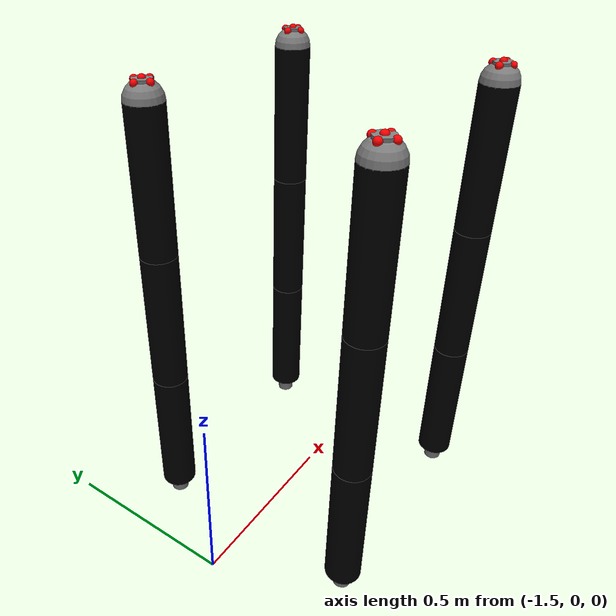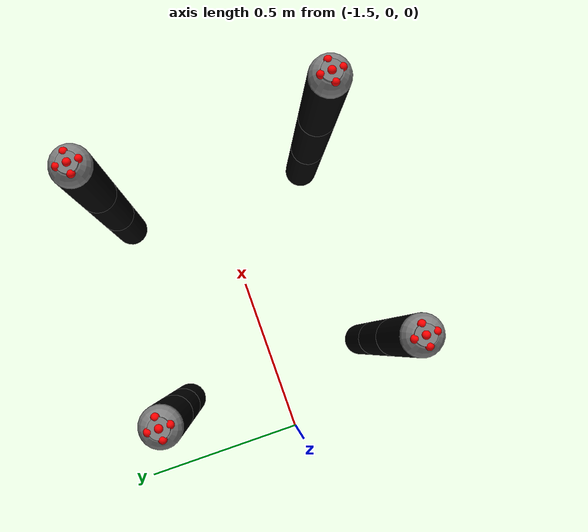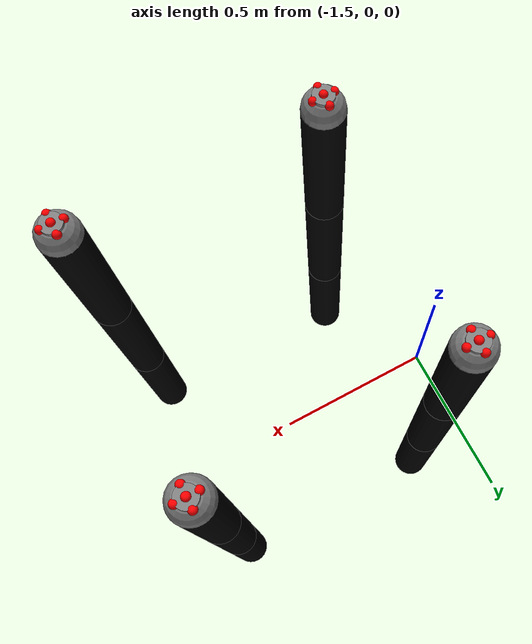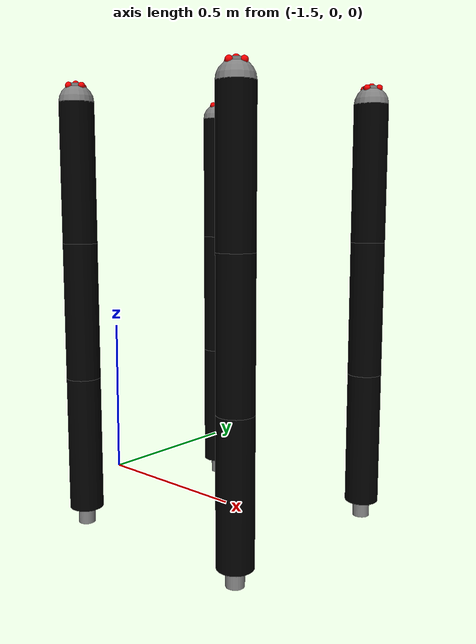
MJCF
<mujoco model="custom_environment">
    <compiler angle="radian" meshdir="assets"/>
    <option cone="elliptic" impratio="10" iterations="50" tolerance="1e-6" solver="Newton"/>
    <asset>
        <!-- 추가적인 자산 (예: 메쉬 파일, 텍스처 등)을 여기 추가할 수 있습니다 -->
    </asset>

    <default>
        <default class="robot_geom">
            <geom type="cylinder" size="0.05 0.2" pos="0 0 0.2" rgba="0 0 0 1" contype="1" conaffinity="1"/>
        </default>
        <default class="guide_geom">
            <geom type="cylinder" size="0.025 0.45" pos="0 0 0.4"/>
        </default>
        <default class="vertical_joint">
            <joint type="slide" axis="0 0 1" pos="0 0 0" range="0 3" armature="0.005" stiffness="1000" damping="10000"/>
        </default>
        <default class="sensor_geom">
            <geom type="sphere" size="0.01" pos="0 0 0" rgba="1 0 0 0" contype="1" conaffinity="1"/>
        </default>

    </default>

    <worldbody>
        <!-- 로봇 1 -->
        <body name="robot1" pos="-0.7 0.3 0.0" quat="-0.3827 0 0 0.9239">
            <body name="robot1_link1" pos="0 0 0">
                <joint name="robot1_vertical_joint" class="vertical_joint" damping="100000"/>
                <geom name="robot1_link1_geom" class="robot_geom"/>
                <body name="robot1_link2" pos="0 0 0.4">
                    <joint name="robot1_vertical_joint2" class="vertical_joint"/>
                    <geom name="robot1_link2_geom" class="robot_geom" />
                    <body name="robot1_link3" pos="0 0 0.4">
                        <joint name="robot1_vertical_joint3" class="vertical_joint"/>
                        <geom name="robot1_link3_geom" class="robot_geom" />
                        <body name="robot1_end_effector" pos="0 0 0.4">
                            <geom name="robot1_ee_geom" type="sphere" size="0.05" pos="0 0 0"/>
                            <!--touch_sensor-->
                            <geom name="robot1_touch_geom_1" type="sphere" size="0.01" pos="0 0 0.049" rgba="1 0 0 0.5"/>
                            <site name="robot1_sensor_1" pos="0 0 0.049" size="0.01" rgba="1 0 0 1"/>
                            <geom name="robot1_touch_geom_2" type="sphere" size="0.01" pos="0.0177 0.0177 0.0433" rgba="1 0 0 0.5"/>
                            <site name="robot1_sensor_2" pos="0.0177 0.0177 0.0433" size="0.01" rgba="1 0 0 1"/>
                            <geom name="robot1_touch_geom_3" type="sphere" size="0.01" pos="-0.0177 0.0177 0.0433" rgba="1 0 0 0.5"/>
                            <site name="robot1_sensor_3" pos="-0.0177 0.0177 0.0433" size="0.01" rgba="1 0 0 1"/>
                            <geom name="robot1_touch_geom_4" type="sphere" size="0.01" pos="-0.0177 -0.0177 0.0433" rgba="1 0 0 0.5"/>
                            <site name="robot1_sensor_4" pos="-0.0177 -0.0177 0.0433" size="0.01" rgba="1 0 0 1"/>
                            <geom name="robot1_touch_geom_5" type="sphere" size="0.01" pos="0.0177 -0.0177 0.0433" rgba="1 0 0 0.5"/>
                            <site name="robot1_sensor_5" pos="0.0177 -0.0177 0.0433" size="0.01" rgba="1 0 0 1"/>

                        </body>
                    </body>
                    <body name="robot1_guide2" pos="0 0 0">
                        <geom name="robot1_guide2_geom" class="guide_geom"/>
                    </body>
                </body>
                <body name="robot1_guide" pos="0 0 0">
                    <geom name="robot1_guide_geom" class="guide_geom"/>
                </body>
            </body>
        </body>
                <!-- 로봇 2 -->
        <body name="robot2" pos="-1.3 0.3 0.0" quat="-0.9239 0 0 0.3827">
            <body name="robot2_link1" pos="0 0 0">
                <joint name="robot2_vertical_joint" class="vertical_joint" damping="100000"/>
                <geom name="robot2_link1_geom" class="robot_geom"/>
                <body name="robot2_link2" pos="0 0 0.4">
                    <joint name="robot2_vertical_joint2" class="vertical_joint"/>
                    <geom name="robot2_link2_geom" class="robot_geom"  />
                    <body name="robot2_link3" pos="0 0 0.4">
                        <joint name="robot2_vertical_joint3" class="vertical_joint"/>
                        <geom name="robot2_link3_geom" class="robot_geom" />
                        <body name="robot2_end_effector" pos="0 0 0.4">
                            <geom name="robot2_ee_geom" type="sphere" size="0.05" pos="0 0 0"/>
                            <!--touch_sensor-->
                            <geom name="robot2_touch_geom_1" type="sphere" size="0.01" pos="0 0 0.049" rgba="1 0 0 0.5"/>
                            <site name="robot2_sensor_1" pos="0 0 0.049" size="0.01" rgba="1 0 0 1"/>
                            <geom name="robot2_touch_geom_2" type="sphere" size="0.01" pos="0.0177 0.0177 0.0433" rgba="1 0 0 0.5"/>
                            <site name="robot2_sensor_2" pos="0.0177 0.0177 0.0433" size="0.01" rgba="1 0 0 1"/>
                            <geom name="robot2_touch_geom_3" type="sphere" size="0.01" pos="-0.0177 0.0177 0.0433" rgba="1 0 0 0.5"/>
                            <site name="robot2_sensor_3" pos="-0.0177 0.0177 0.0433" size="0.01" rgba="1 0 0 1"/>
                            <geom name="robot2_touch_geom_4" type="sphere" size="0.01" pos="-0.0177 -0.0177 0.0433" rgba="1 0 0 0.5"/>
                            <site name="robot2_sensor_4" pos="-0.0177 -0.0177 0.0433" size="0.01" rgba="1 0 0 1"/>
                            <geom name="robot2_touch_geom_5" type="sphere" size="0.01" pos="0.0177 -0.0177 0.0433" rgba="1 0 0 0.5"/>
                            <site name="robot2_sensor_5" pos="0.0177 -0.0177 0.0433" size="0.01" rgba="1 0 0 1"/>

                        </body>
                    </body>
                    <body name="robot2_guide2" pos="0 0 0">
                        <geom name="robot2_guide2_geom" class="guide_geom"/>
                    </body>
                </body>
                <body name="robot2_guide" pos="0 0 0">
                    <geom name="robot2_guide_geom" class="guide_geom"/>
                </body>
            </body>
        </body>
                <!-- 로봇 3 -->
        <body name="robot3" pos="-0.7 -0.3 0" quat="0.3827 0 0 0.9239">
            <body name="robot3_link1" pos="0 0 0">
                <joint name="robot3_vertical_joint" class="vertical_joint" damping="100000"/>
                <geom name="robot3_link1_geom" class="robot_geom"/>
                <body name="robot3_link2" pos="0 0 0.4">
                    <joint name="robot3_vertical_joint2" class="vertical_joint"/>
                    <geom name="robot3_link2_geom" class="robot_geom"  />
                    <body name="robot3_link3" pos="0 0 0.4">
                        <joint name="robot3_vertical_joint3" class="vertical_joint"/>
                        <geom name="robot3_link3_geom" class="robot_geom"/>
                        <body name="robot3_end_effector" pos="0 0 0.4">
                            <geom name="robot3_ee_geom" type="sphere" size="0.05" pos="0 0 0"/>
                            <!--touch_sensor-->
                            <geom name="robot3_touch_geom_1" type="sphere" size="0.01" pos="0 0 0.049" rgba="1 0 0 0.5"/>
                            <site name="robot3_sensor_1" pos="0 0 0.049" size="0.01" rgba="1 0 0 1"/>
                            <geom name="robot3_touch_geom_2" type="sphere" size="0.01" pos="0.0177 0.0177 0.0433" rgba="1 0 0 0.5"/>
                            <site name="robot3_sensor_2" pos="0.0177 0.0177 0.0433" size="0.01" rgba="1 0 0 1"/>
                            <geom name="robot3_touch_geom_3" type="sphere" size="0.01" pos="-0.0177 0.0177 0.0433" rgba="1 0 0 0.5"/>
                            <site name="robot3_sensor_3" pos="-0.0177 0.0177 0.0433" size="0.01" rgba="1 0 0 1"/>
                            <geom name="robot3_touch_geom_4" type="sphere" size="0.01" pos="-0.0177 -0.0177 0.0433" rgba="1 0 0 0.5"/>
                            <site name="robot3_sensor_4" pos="-0.0177 -0.0177 0.0433" size="0.01" rgba="1 0 0 1"/>
                            <geom name="robot3_touch_geom_5" type="sphere" size="0.01" pos="0.0177 -0.0177 0.0433" rgba="1 0 0 0.5"/>
                            <site name="robot3_sensor_5" pos="0.0177 -0.0177 0.0433" size="0.01" rgba="1 0 0 1"/>

                         </body>
                    </body>
                    <body name="robot3_guide2" pos="0 0 0">
                        <geom name="robot3_guide2_geom" class="guide_geom"/>
                        <geom name="touch_geom3" class="sensor_geom"/>

                    </body>
                </body>
                <body name="robot3_guide" pos="0 0 0">
                    <geom name="robot3_guide_geom" class="guide_geom"/>
                </body>
            </body>
        </body>
                <!-- 로봇 4 -->
        <body name="robot4" pos="-1.3 -0.3 0" quat="0.9239 0 0 0.3827">
            <body name="robot4_link1" pos="0 0 0">
                <joint name="robot4_vertical_joint" class="vertical_joint" damping="100000"/>
                <geom name="robot4_link1_geom" class="robot_geom"/>
                <body name="robot4_link2" pos="0 0 0.4">
                    <joint name="robot4_vertical_joint2" class="vertical_joint"/>
                    <geom name="robot4_link2_geom" class="robot_geom" />
                    <body name="robot4_link3" pos="0 0 0.4">
                        <joint name="robot4_vertical_joint3" class="vertical_joint"/>
                        <geom name="robot4_link3_geom" class="robot_geom"/>
                        <body name="robot4_end_effector" pos="0 0 0.4">
                            <geom name="robot4_ee_geom" type="sphere" size="0.05" pos="0 0 0"/>
                            <site name="ee_touch_site4" type="sphere" pos="0 0 0" size="0.05" rgba="0 0 0 1"/>
                            <!--touch_sensor-->
                            <geom name="robot4_touch_geom_1" type="sphere" size="0.01" pos="0 0 0.049" rgba="1 0 0 0.5"/>
                            <site name="robot4_sensor_1" pos="0 0 0.049" size="0.01" rgba="1 0 0 1"/>
                            <geom name="robot4_touch_geom_2" type="sphere" size="0.01" pos="0.0177 0.0177 0.0433" rgba="1 0 0 0.5"/>
                            <site name="robot4_sensor_2" pos="0.0177 0.0177 0.0433" size="0.01" rgba="1 0 0 1"/>
                            <geom name="robot4_touch_geom_3" type="sphere" size="0.01" pos="-0.0177 0.0177 0.0433" rgba="1 0 0 0.5"/>
                            <site name="robot4_sensor_3" pos="-0.0177 0.0177 0.0433" size="0.01" rgba="1 0 0 1"/>
                            <geom name="robot4_touch_geom_4" type="sphere" size="0.01" pos="-0.0177 -0.0177 0.0433" rgba="1 0 0 0.5"/>
                            <site name="robot4_sensor_4" pos="-0.0177 -0.0177 0.0433" size="0.01" rgba="1 0 0 1"/>
                            <geom name="robot4_touch_geom_5" type="sphere" size="0.01" pos="0.0177 -0.0177 0.0433" rgba="1 0 0 0.5"/>
                            <site name="robot4_sensor_5" pos="0.0177 -0.0177 0.0433" size="0.01" rgba="1 0 0 1"/>

                        </body>
                    </body>
                    <body name="robot4_guide2" pos="0 0 0">
                        <geom name="robot4_guide2_geom" class="guide_geom"/>
                    </body>
                </body>
                <body name="robot4_guide" pos="0 0 0">
                    <geom name="robot4_guide_geom" class="guide_geom"/>
                </body>
            </body>
        </body>
    </worldbody>

    <actuator>
        <!-- 로봇 1 액추에이터 -->
        <position joint="robot1_vertical_joint" name="1_actuator_joint" kp="2000" />
        <position joint="robot1_vertical_joint2" name="1_actuator_joint2" kp="10000"/>
        <position joint="robot1_vertical_joint3" name="1_actuator_joint3" kp="10000"/>
         <!-- 로봇 2 액추에이터 -->
        <position joint="robot2_vertical_joint" name="2_actuator_joint" kp="2000"/>
        <position joint="robot2_vertical_joint2" name="2_actuator_joint2" kp="10000"/>
        <position joint="robot2_vertical_joint3" name="2_actuator_joint3" kp="10000"/>
         <!-- 로봇 2 액추에이터 -->
        <position joint="robot3_vertical_joint" name="3_actuator_joint" kp="2000"/>
        <position joint="robot3_vertical_joint2" name="3_actuator_joint2" kp="10000"/>
        <position joint="robot3_vertical_joint3" name="3_actuator_joint3" kp="10000"/>
         <!-- 로봇 2 액추에이터 -->
        <position joint="robot4_vertical_joint" name="4_actuator_joint" kp="2000"/>
        <position joint="robot4_vertical_joint2" name="4_actuator_joint2" kp="10000"/>
        <position joint="robot4_vertical_joint3" name="4_actuator_joint3" kp="10000"/>

    </actuator>

    <sensor>
        <!-- 터치 센서 -->
        <touch name="robot1_sensor1" site="robot1_sensor_1"/>
        <touch name="robot1_sensor2" site="robot1_sensor_2"/>
        <touch name="robot1_sensor3" site="robot1_sensor_3"/>
        <touch name="robot1_sensor4" site="robot1_sensor_4"/>
        <touch name="robot1_sensor5" site="robot1_sensor_5"/>

        <touch name="robot2_sensor1" site="robot2_sensor_1"/>
        <touch name="robot2_sensor2" site="robot2_sensor_2"/>
        <touch name="robot2_sensor3" site="robot2_sensor_3"/>
        <touch name="robot2_sensor4" site="robot2_sensor_4"/>
        <touch name="robot2_sensor5" site="robot2_sensor_5"/>

        <touch name="robot3_sensor1" site="robot3_sensor_1"/>
        <touch name="robot3_sensor2" site="robot3_sensor_2"/>
        <touch name="robot3_sensor3" site="robot3_sensor_3"/>
        <touch name="robot3_sensor4" site="robot3_sensor_4"/>
        <touch name="robot3_sensor5" site="robot3_sensor_5"/>

        <touch name="robot4_sensor1" site="robot4_sensor_1"/>
        <touch name="robot4_sensor2" site="robot4_sensor_2"/>
        <touch name="robot4_sensor3" site="robot4_sensor_3"/>
        <touch name="robot4_sensor4" site="robot4_sensor_4"/>
        <touch name="robot4_sensor5" site="robot4_sensor_5"/>

    </sensor>

    <contact>
        <!-- 로봇 1 충돌 쌍 -->
        <pair geom1="robot1_link1_geom" geom2="robot1_link2_geom"/>
        <pair geom1="robot1_link2_geom" geom2="robot1_link3_geom"/>
        <!-- 로봇 2 충돌 쌍 -->
        <pair geom1="robot2_link1_geom" geom2="robot2_link2_geom"/>
        <pair geom1="robot2_link2_geom" geom2="robot2_link3_geom"/>
        <!-- 로봇 3 충돌 쌍 -->
        <pair geom1="robot3_link1_geom" geom2="robot3_link2_geom"/>
        <pair geom1="robot3_link2_geom" geom2="robot3_link3_geom"/>
        <!-- 로봇 4 충돌 쌍 -->
        <pair geom1="robot4_link1_geom" geom2="robot4_link2_geom"/>
        <pair geom1="robot4_link2_geom" geom2="robot4_link3_geom"/>

    </contact>

</mujoco>
